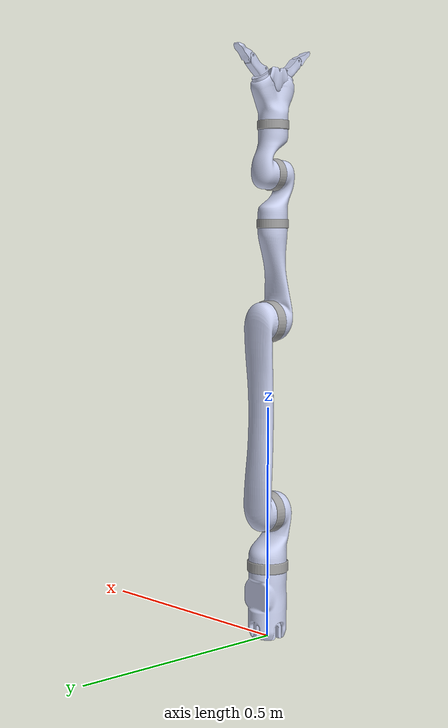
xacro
<?xml version="1.0"?>
<!-- j2s6_2 refers to jaco v2 6DOF spherical 2fingers -->

<robot xmlns:xi="http://www.w3.org/2001/XInclude"
    xmlns:gazebo="http://playerstage.sourceforge.net/gazebo/xmlschema/#gz"
    xmlns:model="http://playerstage.sourceforge.net/gazebo/xmlschema/#model"
    xmlns:sensor="http://playerstage.sourceforge.net/gazebo/xmlschema/#sensor"
    xmlns:body="http://playerstage.sourceforge.net/gazebo/xmlschema/#body"
    xmlns:geom="http://playerstage.sourceforge.net/gazebo/xmlschema/#geom"
    xmlns:joint="http://playerstage.sourceforge.net/gazebo/xmlschema/#joint"
    xmlns:controller="http://playerstage.sourceforge.net/gazebo/xmlschema/#controller"
    xmlns:interface="http://playerstage.sourceforge.net/gazebo/xmlschema/#interface"
    xmlns:rendering="http://playerstage.sourceforge.net/gazebo/xmlschema/#rendering"
    xmlns:renderable="http://playerstage.sourceforge.net/gazebo/xmlschema/#renderable"
    xmlns:physics="http://playerstage.sourceforge.net/gazebo/xmlschema/#physics"
    xmlns:xacro="http://www.ros.org/wiki/xacro" name="j2s6s300">

    <xacro:include filename="$(find kinova_description)/urdf/j2s6s200.xacro"/>

    <xacro:arg name="arm_root" default="base_link" />
    <xacro:property name="arm_root" value="$(arg arm_root)" />
    <link name="${arm_root}"/>
    <xacro:j2s6s200 base_parent="${arm_root}"/>
</robot>

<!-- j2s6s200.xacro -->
<!-- j2_6s refers to jaco v2 6DOF spherical -->

<root xmlns:xi="http://www.w3.org/2001/XInclude"
    xmlns:gazebo="http://playerstage.sourceforge.net/gazebo/xmlschema/#gz"
    xmlns:model="http://playerstage.sourceforge.net/gazebo/xmlschema/#model"
    xmlns:sensor="http://playerstage.sourceforge.net/gazebo/xmlschema/#sensor"
    xmlns:body="http://playerstage.sourceforge.net/gazebo/xmlschema/#body"
    xmlns:geom="http://playerstage.sourceforge.net/gazebo/xmlschema/#geom"
    xmlns:joint="http://playerstage.sourceforge.net/gazebo/xmlschema/#joint"
    xmlns:controller="http://playerstage.sourceforge.net/gazebo/xmlschema/#controller"
    xmlns:interface="http://playerstage.sourceforge.net/gazebo/xmlschema/#interface"
    xmlns:rendering="http://playerstage.sourceforge.net/gazebo/xmlschema/#rendering"
    xmlns:renderable="http://playerstage.sourceforge.net/gazebo/xmlschema/#renderable"
    xmlns:physics="http://playerstage.sourceforge.net/gazebo/xmlschema/#physics"
    xmlns:xacro="http://www.ros.org/wiki/xacro">

    <xacro:include filename="$(find kinova_description)/urdf/kinova_common.xacro" />
    <xacro:include filename="$(find kinova_description)/urdf/kinova_finger_set.xacro" />

    <!-- Import all Gazebo-customization elements -->
    <xacro:include filename="$(find kinova_description)/urdf/kinova.gazebo" />

    <xacro:property name="link_base_mesh" value="base" />
    <xacro:property name="link_1_mesh" value="shoulder" />
    <xacro:property name="link_2_mesh" value="arm" />
    <xacro:property name="link_3_mesh" value="forearm" />
    <xacro:property name="link_4_mesh" value="wrist_spherical_1" />
    <xacro:property name="link_5_mesh" value="wrist_spherical_2" />
    <xacro:property name="link_6_mesh" value="hand_2finger" />

    <xacro:property name="link_base_mesh_no" value="0" />
    <xacro:property name="link_1_mesh_no" value="1" />
    <xacro:property name="link_2_mesh_no" value="2" />
    <xacro:property name="link_3_mesh_no" value="3" />
    <xacro:property name="link_4_mesh_no" value="8" />
    <xacro:property name="link_5_mesh_no" value="9" />
    <xacro:property name="link_6_mesh_no" value="55" />

    <xacro:property name="joint_base" value="joint_base" />
    <xacro:property name="joint_base_type" value="fixed" />
    <xacro:property name="joint_base_axis_xyz" value="0 0 0" />
    <xacro:property name="joint_base_origin_xyz" value="0 0 0" />
    <xacro:property name="joint_base_origin_rpy" value="0 0 0" />

    <xacro:property name="joint_1" value="joint_1" />
    <xacro:property name="joint_1_type" value="continuous" />
    <xacro:property name="joint_1_axis_xyz" value="0 0 1" />
    <xacro:property name="joint_1_origin_xyz" value="0 0 0.15675" />
    <xacro:property name="joint_1_origin_rpy" value="0 ${J_PI} 0" />
    <xacro:property name="joint_1_lower_limit" value="${-2*J_PI}" />
    <xacro:property name="joint_1_upper_limit" value="${2*J_PI}" />
    <xacro:property name="joint_1_velocity_limit" value="${36*J_PI/180}" />
    <xacro:property name="joint_1_torque_limit" value="40" />

    <xacro:property name="joint_2" value="joint_2" />
    <xacro:property name="joint_2_type" value="revolute" />
    <xacro:property name="joint_2_axis_xyz" value="0 0 1" />
    <xacro:property name="joint_2_origin_xyz" value="0 0.0016 -0.11875" />
    <xacro:property name="joint_2_origin_rpy" value="${-J_PI/2} 0 ${J_PI}"/>
    <xacro:property name="joint_2_lower_limit" value="${47/180*J_PI}" />
    <xacro:property name="joint_2_upper_limit" value="${313/180*J_PI}" />
    <xacro:property name="joint_2_velocity_limit" value="${36*J_PI/180}" />
    <xacro:property name="joint_2_torque_limit" value="80" />

    <xacro:property name="joint_3" value="joint_3" />
    <xacro:property name="joint_3_type" value="revolute" />
    <xacro:property name="joint_3_axis_xyz" value="0 0 1" />
    <xacro:property name="joint_3_origin_xyz" value="0 -0.410 0" />
    <xacro:property name="joint_3_origin_rpy" value="0 ${J_PI} 0" />
    <xacro:property name="joint_3_lower_limit" value="${19/180*J_PI}" />
    <xacro:property name="joint_3_upper_limit" value="${341/180*J_PI}" />
    <xacro:property name="joint_3_velocity_limit" value="${36*J_PI/180}" />
    <xacro:property name="joint_3_torque_limit" value="40" />

    <xacro:property name="joint_4" value="joint_4" />
    <xacro:property name="joint_4_type" value="continuous" />
    <xacro:property name="joint_4_axis_xyz" value="0 0 1" />
    <xacro:property name="joint_4_origin_xyz" value="0 0.2073 -0.0114" />
    <xacro:property name="joint_4_origin_rpy" value="${-J_PI/2} 0 ${J_PI}" />
    <xacro:property name="joint_4_lower_limit" value="${-2*J_PI}" />
    <xacro:property name="joint_4_upper_limit" value="${2*J_PI}" />
    <xacro:property name="joint_4_velocity_limit" value="${48*J_PI/180}" />
    <xacro:property name="joint_4_torque_limit" value="20" />

    <xacro:property name="joint_5" value="joint_5" />
    <xacro:property name="joint_5_type" value="revolute" />
    <xacro:property name="joint_5_axis_xyz" value="0 0 1" />
    <xacro:property name="joint_5_origin_xyz" value="0 0 -0.10375" />
    <xacro:property name="joint_5_origin_rpy" value="${J_PI/2} 0 ${J_PI}" />
    <xacro:property name="joint_5_lower_limit" value="${30/180*J_PI}" />
    <xacro:property name="joint_5_upper_limit" value="${330/180*J_PI}" />
    <xacro:property name="joint_5_velocity_limit" value="${48*J_PI/180}" />
    <xacro:property name="joint_5_torque_limit" value="20" />

    <xacro:property name="joint_6" value="joint_6" />
    <xacro:property name="joint_6_type" value="continuous" />
    <xacro:property name="joint_6_axis_xyz" value="0 0 1" />
    <xacro:property name="joint_6_origin_xyz" value="0 0.10375 0" />
    <xacro:property name="joint_6_origin_rpy" value="${-J_PI/2} 0 ${J_PI}" />
    <xacro:property name="joint_6_lower_limit" value="${-2*J_PI}" />
    <xacro:property name="joint_6_upper_limit" value="${2*J_PI}" />
    <xacro:property name="joint_6_velocity_limit" value="${48*J_PI/180}" />
    <xacro:property name="joint_6_torque_limit" value="20" />

    <xacro:property name="joint_end_effector" value="end_effector_offset" />
    <xacro:property name="joint_end_effector_type" value="fixed" />
    <xacro:property name="joint_end_effector_axis_xyz" value="0 0 0" />
    <xacro:property name="joint_end_effector_origin_xyz" value="0 0 -0.1600" />
    <xacro:property name="joint_end_effector_origin_rpy" value="${J_PI} 0 ${J_PI/2}" />

    <xacro:macro name="j2s6s200" params="base_parent prefix:=j2s6s200">

        <xacro:gazebo_config robot_namespace="${prefix}"/>

        <xacro:kinova_armlink link_name="${prefix}_link_base" link_mesh="${link_base_mesh}" mesh_no="${link_base_mesh_no}"/>
        <xacro:kinova_armjoint joint_name="${prefix}_joint_base" type="${joint_base_type}" parent="${base_parent}" child="${prefix}_link_base" joint_axis_xyz="${joint_base_axis_xyz}" joint_origin_xyz="${joint_base_origin_xyz}" joint_origin_rpy="${joint_base_origin_rpy}" joint_lower_limit="0" joint_upper_limit="0" joint_velocity_limit="0" joint_torque_limit="0" fixed="true"/>

        <xacro:kinova_armlink link_name="${prefix}_link_1" link_mesh="${link_1_mesh}" use_ring_mesh="true" mesh_no="${link_1_mesh_no}"/>
        <xacro:kinova_armjoint joint_name="${prefix}_joint_1" type="${joint_1_type}" parent="${prefix}_link_base" child="${prefix}_link_1" joint_axis_xyz="${joint_1_axis_xyz}" joint_origin_xyz="${joint_1_origin_xyz}" joint_origin_rpy="${joint_1_origin_rpy}" joint_lower_limit="${joint_1_lower_limit}" joint_upper_limit="${joint_1_upper_limit}" joint_velocity_limit="${joint_1_velocity_limit}" joint_torque_limit="${joint_1_torque_limit}"/>

        <xacro:kinova_armlink link_name="${prefix}_link_2" link_mesh="${link_2_mesh}" use_ring_mesh="true" mesh_no="${link_2_mesh_no}"/>
        <xacro:kinova_armjoint joint_name="${prefix}_joint_2" type="${joint_2_type}" parent="${prefix}_link_1" child="${prefix}_link_2" joint_axis_xyz="${joint_2_axis_xyz}" joint_origin_xyz="${joint_2_origin_xyz}" joint_origin_rpy="${joint_2_origin_rpy}" joint_lower_limit="${joint_2_lower_limit}" joint_upper_limit="${joint_2_upper_limit}" joint_velocity_limit="${joint_2_velocity_limit}" joint_torque_limit="${joint_2_torque_limit}"/>

        <xacro:kinova_armlink link_name="${prefix}_link_3" link_mesh="${link_3_mesh}" use_ring_mesh="true" mesh_no="${link_3_mesh_no}"/>
        <xacro:kinova_armjoint joint_name="${prefix}_joint_3" type="${joint_3_type}" parent="${prefix}_link_2" child="${prefix}_link_3" joint_axis_xyz="${joint_3_axis_xyz}" joint_origin_xyz="${joint_3_origin_xyz}" joint_origin_rpy="${joint_3_origin_rpy}" joint_lower_limit="${joint_3_lower_limit}" joint_upper_limit="${joint_3_upper_limit}" joint_velocity_limit="${joint_3_velocity_limit}" joint_torque_limit="${joint_3_torque_limit}"/>

        <xacro:kinova_armlink link_name="${prefix}_link_4" link_mesh="${link_4_mesh}" use_ring_mesh="true" ring_mesh="ring_small" mesh_no="${link_4_mesh_no}"/>
        <xacro:kinova_armjoint joint_name="${prefix}_joint_4" type="${joint_4_type}" parent="${prefix}_link_3" child="${prefix}_link_4" joint_axis_xyz="${joint_4_axis_xyz}" joint_origin_xyz="${joint_4_origin_xyz}" joint_origin_rpy="${joint_4_origin_rpy}" joint_lower_limit="${joint_4_lower_limit}" joint_upper_limit="${joint_4_upper_limit}" joint_velocity_limit="${joint_4_velocity_limit}" joint_torque_limit="${joint_4_torque_limit}"/>

        <xacro:kinova_armlink link_name="${prefix}_link_5" link_mesh="${link_5_mesh}" use_ring_mesh="true" ring_mesh="ring_small" mesh_no="${link_5_mesh_no}"/>
        <xacro:kinova_armjoint joint_name="${prefix}_joint_5" type="${joint_5_type}" parent="${prefix}_link_4" child="${prefix}_link_5" joint_axis_xyz="${joint_5_axis_xyz}" joint_origin_xyz="${joint_5_origin_xyz}" joint_origin_rpy="${joint_5_origin_rpy}" joint_lower_limit="${joint_5_lower_limit}" joint_upper_limit="${joint_5_upper_limit}" joint_velocity_limit="${joint_5_velocity_limit}" joint_torque_limit="${joint_5_torque_limit}"/>

        <xacro:kinova_armlink link_name="${prefix}_link_6" link_mesh="${link_6_mesh}" use_ring_mesh="true" ring_mesh="ring_small" mesh_no="${link_6_mesh_no}"/>
        <xacro:kinova_armjoint joint_name="${prefix}_joint_6" type="${joint_6_type}" parent="${prefix}_link_5" child="${prefix}_link_6" joint_axis_xyz="${joint_6_axis_xyz}" joint_origin_xyz="${joint_6_origin_xyz}" joint_origin_rpy="${joint_6_origin_rpy}" joint_lower_limit="${joint_6_lower_limit}" joint_upper_limit="${joint_6_upper_limit}" joint_velocity_limit="${joint_6_velocity_limit}" joint_torque_limit="${joint_6_torque_limit}"/>

        <xacro:kinova_virtual_link link_name="${prefix}_end_effector"/>
        <xacro:kinova_virtual_joint joint_name="${prefix}_joint_end_effector" type="${joint_end_effector_type}" parent="${prefix}_link_6" child="${prefix}_end_effector" joint_axis_xyz="${joint_end_effector_axis_xyz}" joint_origin_xyz="${joint_end_effector_origin_xyz}" joint_origin_rpy="${joint_end_effector_origin_rpy}" joint_lower_limit="0" joint_upper_limit="0"/>

    <xacro:kinova_2fingers link_hand="${prefix}_link_6" prefix="${prefix}_"/>

    </xacro:macro>

</root>

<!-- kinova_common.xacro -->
<root xmlns:xi="http://www.w3.org/2001/XInclude"
	xmlns:gazebo="http://playerstage.sourceforge.net/gazebo/xmlschema/#gz"
    xmlns:model="http://playerstage.sourceforge.net/gazebo/xmlschema/#model"
	xmlns:sensor="http://playerstage.sourceforge.net/gazebo/xmlschema/#sensor"
	xmlns:body="http://playerstage.sourceforge.net/gazebo/xmlschema/#body"
    xmlns:geom="http://playerstage.sourceforge.net/gazebo/xmlschema/#geom"
    xmlns:joint="http://playerstage.sourceforge.net/gazebo/xmlschema/#joint"
	xmlns:controller="http://playerstage.sourceforge.net/gazebo/xmlschema/#controller"
	xmlns:interface="http://playerstage.sourceforge.net/gazebo/xmlschema/#interface"
	xmlns:rendering="http://playerstage.sourceforge.net/gazebo/xmlschema/#rendering"
    xmlns:renderable="http://playerstage.sourceforge.net/gazebo/xmlschema/#renderable"
    xmlns:physics="http://playerstage.sourceforge.net/gazebo/xmlschema/#physics"
	xmlns:xacro="http://www.ros.org/wiki/xacro">

<xacro:include filename="$(find kinova_description)/urdf/kinova_inertial.xacro" />

    <xacro:property name="J_PI" value="3.1415926535897931" />

    <xacro:macro name="kinova_armlink" params="link_name link_mesh ring_mesh:=ring_big use_ring_mesh:=false mesh_no">
        <link name="${link_name}">
            <visual>
                <geometry>
                    <mesh
                        filename="package://kinova_description/meshes/${link_mesh}.dae"/>
                </geometry>
                <material name="carbon_fiber">
                    <color rgba="0.792156862745098 0.819607843137255 0.933333333333333 1" />
                </material>
            </visual>

	    <!-- Adding ring to the model -->
	         <xacro:if value="${use_ring_mesh}">
	           <visual>
                <geometry>
                    <mesh
                        filename="package://kinova_description/meshes/${ring_mesh}.dae"/>
                </geometry>
             </visual>
	    </xacro:if>

            <collision>
                <geometry>
                    <mesh
                        filename="package://kinova_description/meshes/${link_mesh}.dae"/>
                </geometry>
            </collision>
						<xacro:kinova_inertial mesh_no="${mesh_no}"/>
      </link>

    </xacro:macro>

  <xacro:property name="dummy_default_value" value="1234567890"/>
  <xacro:macro name="kinova_armjoint" params="joint_name
                                              type
                                              parent
                                              child
                                              joint_axis_xyz
                                              joint_origin_xyz
                                              joint_origin_rpy
                                              joint_lower_limit:=${dummy_default_value}
                                              joint_upper_limit:=${dummy_default_value}
                                              joint_velocity_limit:=${dummy_default_value}
                                              joint_torque_limit:=${dummy_default_value}
                                              fixed:=false">
    <xacro:if value="${(type == 'fixed' and not fixed) or (type != 'fixed' and fixed)}"><xacro:ERROR_inconsistent_joint_type_specification/></xacro:if>
    <xacro:if value="${type == 'revolute'}">
      <xacro:if value="${joint_lower_limit == dummy_default_value}"><xacro:ERROR_joint_lower_limit_needs_to_be_set_for_a_revolute_joint/></xacro:if>
      <xacro:if value="${joint_upper_limit == dummy_default_value}"><xacro:ERROR_joint_upper_limit_needs_to_be_set_for_a_revolute_joint/></xacro:if>
    </xacro:if>
    <xacro:unless value="${type =='fixed'}">
      <xacro:if value="${joint_velocity_limit == dummy_default_value}"><xacro:ERROR_joint_velocity_limit_needs_to_be_set_for_a_non_fixed_joint/></xacro:if>
      <xacro:if value="${joint_torque_limit == dummy_default_value}"><xacro:ERROR_joint_torque_limit_needs_to_be_set_for_a_non_fixed_joint/></xacro:if>
    </xacro:unless>
    <joint name="${joint_name}" type="${type}">
        <parent link="${parent}"/>
        <child link="${child}"/>
        <axis xyz="${joint_axis_xyz}"/>
        <xacro:if value="${type == 'revolute'}">
        <limit effort="${joint_torque_limit}" velocity="${joint_velocity_limit}" lower="${joint_lower_limit}" upper="${joint_upper_limit}"/>
        </xacro:if>
        <xacro:if value="${type == 'continuous'}">
        <limit effort="${joint_torque_limit}" velocity="${joint_velocity_limit}"/>
        </xacro:if>
        <origin xyz="${joint_origin_xyz}" rpy="${joint_origin_rpy}"/>
        <dynamics damping="0.0" friction="0.0"/>
     </joint>
   <xacro:unless value="${fixed}">
     <transmission name="${joint_name}_trans">
        <type>transmission_interface/SimpleTransmission</type>
        <joint name="${joint_name}">
          <hardwareInterface>hardware_interface/EffortJointInterface</hardwareInterface>
        </joint>
        <actuator name="${joint_name}_actuator">
          <hardwareInterface>hardware_interface/EffortJointInterface</hardwareInterface>
        <mechanicalReduction>160</mechanicalReduction>
        </actuator>
     </transmission>
     <!--For torque sensing in simulation-->
     <gazebo reference="${joint_name}">
        <provideFeedback>true</provideFeedback>
      </gazebo>
      <gazebo>
        <plugin name="ft_sensor" filename="libgazebo_ros_ft_sensor.so">
          <updateRate>30.0</updateRate>
          <topicName>${joint_name}_ft_sensor_topic</topicName>
          <jointName>${joint_name}</jointName>
        </plugin>
      </gazebo>
     </xacro:unless>
  </xacro:macro>

    <xacro:macro name="kinova_virtual_link" params="link_name">
        <link name="${link_name}"/>
    </xacro:macro>

    <xacro:macro name="kinova_virtual_joint" params="joint_name type parent child joint_axis_xyz joint_origin_xyz joint_origin_rpy joint_lower_limit joint_upper_limit">
    <joint name="${joint_name}" type="${type}">
        <parent link="${parent}"/>
        <child link="${child}"/>
        <axis xyz="${joint_axis_xyz}"/>
        <xacro:unless value="${type == 'fixed'}">
        <limit effort="2000" velocity="1" lower="${joint_lower_limit}" upper="${joint_upper_limit}"/>
        </xacro:unless>
        <origin xyz="${joint_origin_xyz}" rpy="${joint_origin_rpy}"/>
     </joint>
    </xacro:macro>

    <xacro:macro name="kinova_finger" params="prefix finger_number hand finger_origin_xyz finger_origin_rpy">

        <xacro:kinova_armlink link_name="${prefix}link_finger_${finger_number}" link_mesh="finger_proximal" mesh_no="57"/>

        <joint name="${prefix}joint_finger_${finger_number}" type="revolute">
            <parent link="${hand}"/>
            <child link="${prefix}link_finger_${finger_number}"/>
            <axis xyz="0 0 1"/>
            <origin xyz="${finger_origin_xyz}" rpy="${finger_origin_rpy}"/>
            <limit lower="0" upper="1.51" effort="2" velocity="1"/>
        </joint>
		    <transmission name="${prefix}joint_finger_${finger_number}_trans">
					<type>transmission_interface/SimpleTransmission</type>
					<joint name="${prefix}joint_finger_${finger_number}">
					  <hardwareInterface>hardware_interface/EffortJointInterface</hardwareInterface>
					</joint>
					<actuator name="${prefix}joint_finger_${finger_number}_actuator">
					<hardwareInterface>hardware_interface/EffortJointInterface</hardwareInterface>
					<mechanicalReduction>1</mechanicalReduction>
					</actuator>
		    </transmission>

        <xacro:kinova_armlink link_name="${prefix}link_finger_tip_${finger_number}" link_mesh="finger_distal" mesh_no="58"/>

        <joint name="${prefix}joint_finger_tip_${finger_number}" type="revolute">
            <parent link="${prefix}link_finger_${finger_number}"/>
            <child link="${prefix}link_finger_tip_${finger_number}"/>
            <axis xyz="0 0 1"/>
            <origin xyz="0.044 -0.003 0" rpy="0 0 0"/>
            <limit lower="0" upper="2" effort="2" velocity="1"/>
        </joint>
        <transmission name="${prefix}joint_finger_tip_${finger_number}_trans">
					<type>transmission_interface/SimpleTransmission</type>
					<joint name="${prefix}joint_finger_tip_${finger_number}">
					  <hardwareInterface>hardware_interface/EffortJointInterface</hardwareInterface>
					</joint>
					<actuator name="${prefix}joint_finger_tip_${finger_number}_actuator">
					<hardwareInterface>hardware_interface/EffortJointInterface</hardwareInterface>
					<mechanicalReduction>1</mechanicalReduction>
					</actuator>
        </transmission>

    </xacro:macro>

</root>

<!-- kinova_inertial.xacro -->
<root xmlns:xi="http://www.w3.org/2001/XInclude"
	xmlns:gazebo="http://playerstage.sourceforge.net/gazebo/xmlschema/#gz"
    xmlns:model="http://playerstage.sourceforge.net/gazebo/xmlschema/#model"
	xmlns:sensor="http://playerstage.sourceforge.net/gazebo/xmlschema/#sensor"
	xmlns:body="http://playerstage.sourceforge.net/gazebo/xmlschema/#body"
    xmlns:geom="http://playerstage.sourceforge.net/gazebo/xmlschema/#geom"
    xmlns:joint="http://playerstage.sourceforge.net/gazebo/xmlschema/#joint"
	xmlns:controller="http://playerstage.sourceforge.net/gazebo/xmlschema/#controller"
	xmlns:interface="http://playerstage.sourceforge.net/gazebo/xmlschema/#interface"
	xmlns:rendering="http://playerstage.sourceforge.net/gazebo/xmlschema/#rendering"
    xmlns:renderable="http://playerstage.sourceforge.net/gazebo/xmlschema/#renderable"
    xmlns:physics="http://playerstage.sourceforge.net/gazebo/xmlschema/#physics"
	xmlns:xacro="http://www.ros.org/wiki/xacro">

<xacro:macro name="inertia_cylinder" params="mass height radius axis:=0">

  <!-- z Axis -->
  <xacro:unless value="${axis}">
    <inertia  ixx="${0.083333 * mass * (3*radius*radius + height*height)}" ixy="0" ixz="0"
              iyy="${0.083333 * mass * (3*radius*radius + height*height)}" iyz="0"
              izz="${0.5*mass*radius*radius}" />
  </xacro:unless>

  <!-- y Axis -->
  <xacro:unless value="${axis-1}">
   <inertia  ixx="${0.083333 * mass * (3*radius*radius + height*height)}" ixy="0" ixz="0"
             iyy="${0.5*mass*radius*radius}"
             izz="${0.083333 * mass * (3*radius*radius + height*height)}" iyz="0" />
  </xacro:unless>

  <!-- x Axis -->
  <xacro:unless value="${axis-2}">
   <inertia  ixx="${0.5*mass*radius*radius}"
             iyy="${0.083333 * mass * (3*radius*radius + height*height)}" iyz="0"
             izz="${0.083333 * mass * (3*radius*radius + height*height)}" ixy="0" ixz="0" />
  </xacro:unless>
</xacro:macro>

<xacro:macro name="kinova_inertial" params="mesh_no">
  <!-- base = 0 -->
  <xacro:unless value="${mesh_no}">
    <inertial>
        <mass value="0.46784" />
        <origin xyz="0 0 0.1255" rpy="0 0 0"/>
        <xacro:inertia_cylinder height="0.14"  radius = "0.04" mass="0.46784"/>
    </inertial>
  </xacro:unless>

  <!-- shoulder = 1 -->
  <xacro:unless value="${mesh_no-1}">
    <inertial>
        <mass value="0.7477" />
        <origin xyz="0 -0.002 -0.0605" />
        <xacro:inertia_cylinder height="0.14"  radius = "0.04" mass="0.7477"/>
    </inertial>
  </xacro:unless>

  <!-- arm = 2-->
  <xacro:unless value="${mesh_no-2}">
    <inertial>
        <mass value="0.99" />
        <origin xyz="0 -0.2065 -0.01" />
        <xacro:inertia_cylinder height="0.35"  radius = "0.04" mass="0.99" axis="1"/>
    </inertial>
  </xacro:unless>

  <!-- forearm = 3 -->
  <xacro:unless value="${mesh_no-3}">
    <inertial>
        <mass value="0.6763" />
        <origin xyz="0 0.081 -0.0086" />
        <xacro:inertia_cylinder height="0.15"  radius = "0.03" mass="0.6763" axis="1"/>
    </inertial>
  </xacro:unless>

  <!-- wrist = 4 -->
  <xacro:unless value="${mesh_no-4}">
    <inertial>
        <mass value="0.426367" />
        <origin xyz="0 -0.037 -0.0642" />
        <xacro:inertia_cylinder height="0.02"  radius = "0.04" mass="0.1785"/>
    </inertial>
  </xacro:unless>

<!--arm_mico       		5 -->
  <xacro:unless value="${mesh_no-5}">
    <inertial>
        <mass value="0.85968" />
        <origin xyz="0 -0.145  -0.0076"/>
        <xacro:inertia_cylinder height="0.25"  radius = "0.03" mass="0.85968" axis="1"/>
    </inertial>
  </xacro:unless>

<!--   arm_half1 (7dof)		6 -->
  <xacro:unless value="${mesh_no-6}">
    <inertial>
        <mass value="0.8447" />
        <origin xyz="0 -0.103563213 0" />
        <xacro:inertia_cylinder height="0.18"  radius = "0.03" mass="0.8447" axis="1"/>
    </inertial>
  </xacro:unless>

<!--   arm_half2 (7dof)		7 -->
  <xacro:unless value="${mesh_no-7}">
    <inertial>
        <mass value="0.8447" />
        <origin xyz="0 0 -0.1022447445" />
        <xacro:inertia_cylinder height="0.18"  radius = "0.03" mass="0.8447"/>
    </inertial>
  </xacro:unless>

<!--   wrist_spherical_1  8 -->
  <xacro:unless value="${mesh_no-8}">
    <inertial>
        <mass value="0.463" />
        <origin xyz="0 0.0028848942 -0.0541932613" />
        <xacro:inertia_cylinder height="0.1"  radius = "0.02" mass="0.463"/>
    </inertial>
  </xacro:unless>
<!--   wrist_spherical_2  9 -->
  <xacro:unless value="${mesh_no-9}">
    <inertial>
        <mass value="0.463" />
        <origin xyz="0 0.0497208855 -0.0028562765" />
        <xacro:inertia_cylinder height="0.1"  radius = "0.02" mass="0.463" axis="1"/>
    </inertial>
  </xacro:unless>

<!--   forearm_mico  10 -->
  <xacro:unless value="${mesh_no-10}">
    <inertial>
        <mass value="0.606" />
        <origin xyz="0 0.0463 -0.0065" />
        <xacro:inertia_cylinder height="0.08"  radius = "0.02" mass="0.606" axis="1"/>
    </inertial>
  </xacro:unless>

  <!-- hand 3 finger = 55 -->
  <xacro:unless value="${mesh_no - 55}">
    <inertial>
        <mass value="0.99" />
        <origin xyz="0 0 -0.06" />
        <xacro:inertia_cylinder height="0.03"  radius = "0.04" mass="0.727"/>
    </inertial>
  </xacro:unless>

  <!-- hand 2 finger = 56 -->
  <xacro:unless value="${mesh_no - 56}">
   <inertial>
        <mass value="0.78" />
        <origin xyz="0 0 -0.06" />
        <xacro:inertia_cylinder height="0.03"  radius = "0.04" mass="0.78"/>
    </inertial>
  </xacro:unless>

  <!-- finger_proximal = 57 -->
  <xacro:unless value="${mesh_no - 57}">
    <inertial>
        <mass value="0.01" />
        <origin xyz="0.022 0 0" />
        <xacro:inertia_cylinder height="0.03"  radius = "0.004" mass="0.01"/>
    </inertial>

  </xacro:unless>

  <!-- finger_distal = 58 -->
  <xacro:unless value="${mesh_no - 58}">
    <inertial>
        <mass value="0.01" />
        <origin xyz="0.022 0 0" />
        <xacro:inertia_cylinder height="0.03"  radius = "0.004" mass="0.01"/>
    </inertial>
  </xacro:unless>

</xacro:macro>
</root>
